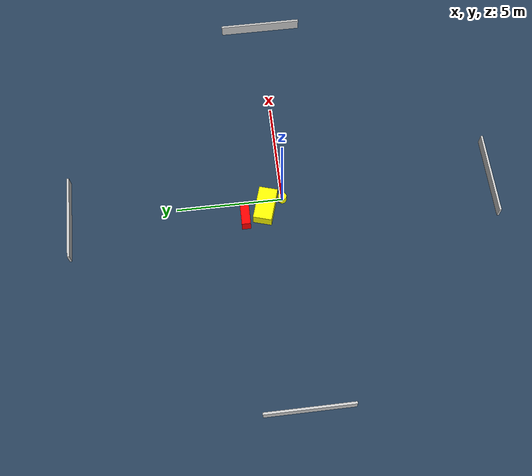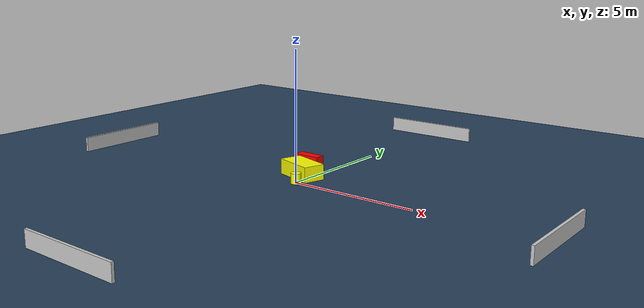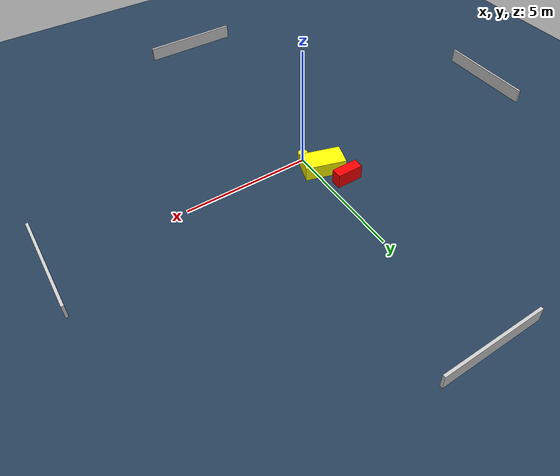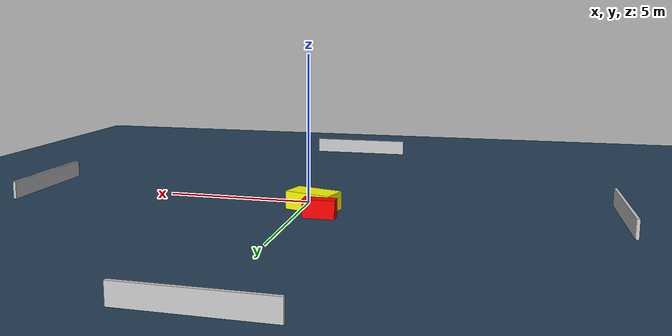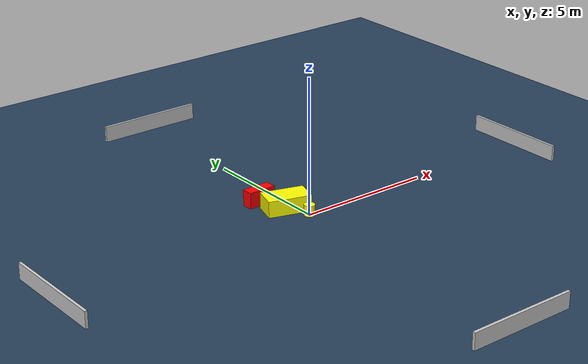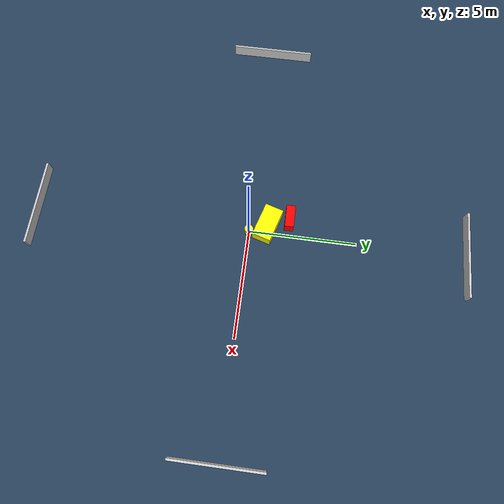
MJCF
<?xml version="1.0" ?>
<mujoco model="generated_environment">
  <option timestep="0.01" integrator="RK4" cone="elliptic"/>
  <default>
    <geom density="1"/>
  </default>
  <asset>
    <texture builtin="gradient" height="3072" name="skybox" rgb1="0.3 0.5 0.7" rgb2="0 0 0" type="skybox" width="512"/>
    <texture builtin="checker" height="300" name="groundplane" rgb1="0.2 0.3 0.4" rgb2="0.1 0.2 0.3" type="2d" width="300"/>
    <material name="groundplane" reflectance="0.2" texrepeat="5 5" texture="groundplane"/>
  </asset>
  <worldbody>
    <light dir="0 0 -1" directional="true" pos="0 0 1.5"/>
    <geom condim="3" friction="0.5 0.005 0.001" material="groundplane" name="floor" pos="0 0 0" size="0 0 0.05" type="plane"/>
    <body name="walls">
      <geom name="wall_1" condim="4" pos="-10.0 0.0 0.3" rgba="0.800000011920929 0.800000011920929 0.800000011920929 1.0" size="0.05 2.0 0.3" type="box"/>
      <geom name="wall_2" condim="4" pos="10.0 0.0 0.3" rgba="0.800000011920929 0.800000011920929 0.800000011920929 1.0" size="0.05 2.0 0.3" type="box"/>
      <geom name="wall_3" condim="4" pos="0.0 -10.0 0.3" rgba="0.800000011920929 0.800000011920929 0.800000011920929 1.0" size="2.0 0.05 0.3" type="box"/>
      <geom name="wall_4" condim="4" pos="0.0 10.0 0.3" rgba="0.800000011920929 0.800000011920929 0.800000011920929 1.0" size="2.0 0.05 0.3" type="box"/>
    </body>
    <body name="robot">
      <joint name="joint_x" type="slide" pos="0 0 0" axis="1 0 0"/>
      <joint name="joint_y" type="slide" pos="0 0 0" axis="0 1 0"/>
      <geom name="robot" type="cylinder" pos="0.0 0.0 0.2" size="0.2 0.2 0.0" mass="5.0" friction="1.0 0.005 0.0001" condim="4" rgba="1.0 1.0 0.0 1.0"/>
    </body>
    <body name="obstacle_1_movable">
      <geom name="obstacle_1_movable" condim="4" pos="-0.36588658962482684 0.8373303322984166 0.3" euler="0 0 73.27162911797103" friction="0.0 0.005 0.001" rgba="1.0 1.0 0.0 1.0" size="0.43745716246866245 0.7997944660233318 0.3" type="box" mass="0.1"/>
      <joint type="free"/>
    </body>
    <body name="obstacle_2_static">
      <geom name="obstacle_2_static" condim="4" pos="-0.7947957200925216 1.8251935328980038 0.3" euler="0 0 90.06707724895719" friction="0.0 0.005 0.001" rgba="1.0 0.0 0.0 1.0" size="0.20814261426306802 0.5221110575613128 0.3" type="box"/>
    </body>
  </worldbody>
  <actuator>
    <motor name="actuator_x" joint="joint_x" gear="1" ctrlrange="-1 1"/>
    <motor name="actuator_y" joint="joint_y" gear="1" ctrlrange="-1 1"/>
  </actuator>
</mujoco>
